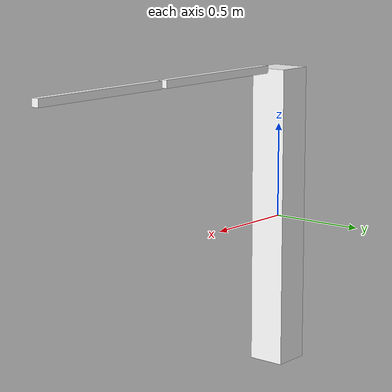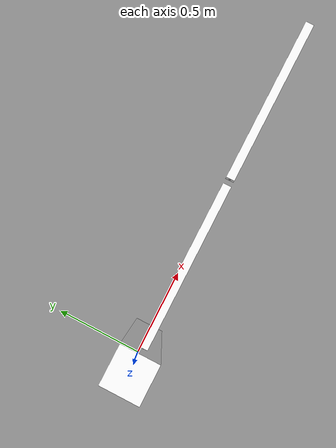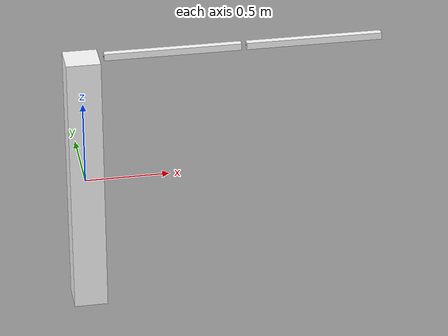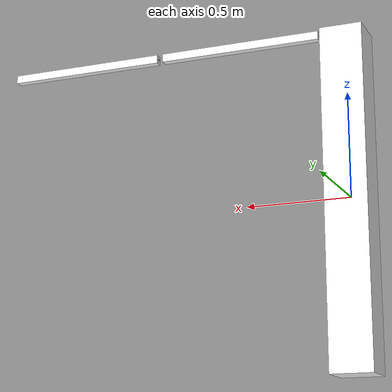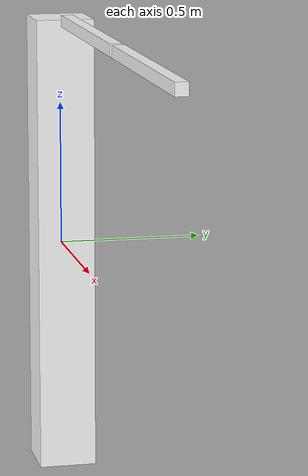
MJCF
<mujoco>
    <worldbody>
        <geom name="mastil" type="box" size="0.1 0.1 0.8" rgba="5 1 1 1"/>
        <body name="brazo" pos="0.13 0 0.8">
            <inertial pos="0.4 0 0" mass="1" diaginertia="1 1 1"/>
            <geom name="brazo" type="box" size="0.4 0.02 0.02" pos="0.4 0 0" rgba="5 1 1 1"/>
            <site name="under_box"/>
            <joint name="articulacion" type="hinge" axis="0 1 0"/>
            <body name="brazo2" pos="0.83 0 0">
                <inertial pos="0.4 0 0" mass="1" diaginertia="1 1 1"/>
                <geom name="brazo2" type="box" size="0.4 0.02 0.02" pos="0.4 0 0" rgba="5 1 1 1"/>
                <site name="under_box2"/>
                <joint name="articulacion2" type="hinge" axis="0 1 0"/>
            </body>
        </body>
    </worldbody>

    <sensor>
        <force name="force" site="under_box"/>
        <torque name="torque" site="under_box"/>

        <force name="force2" site="under_box2"/>
        <torque name="torque2" site="under_box2"/>
    </sensor>

    <actuator>
        <motor name="motor" joint="articulacion" ctrllimited="true" ctrlrange="-7.3 7.3"/>
        <motor name="motor2" joint="articulacion2" ctrllimited="true" ctrlrange="-7.3 7.3"/>
    </actuator>
</mujoco>
